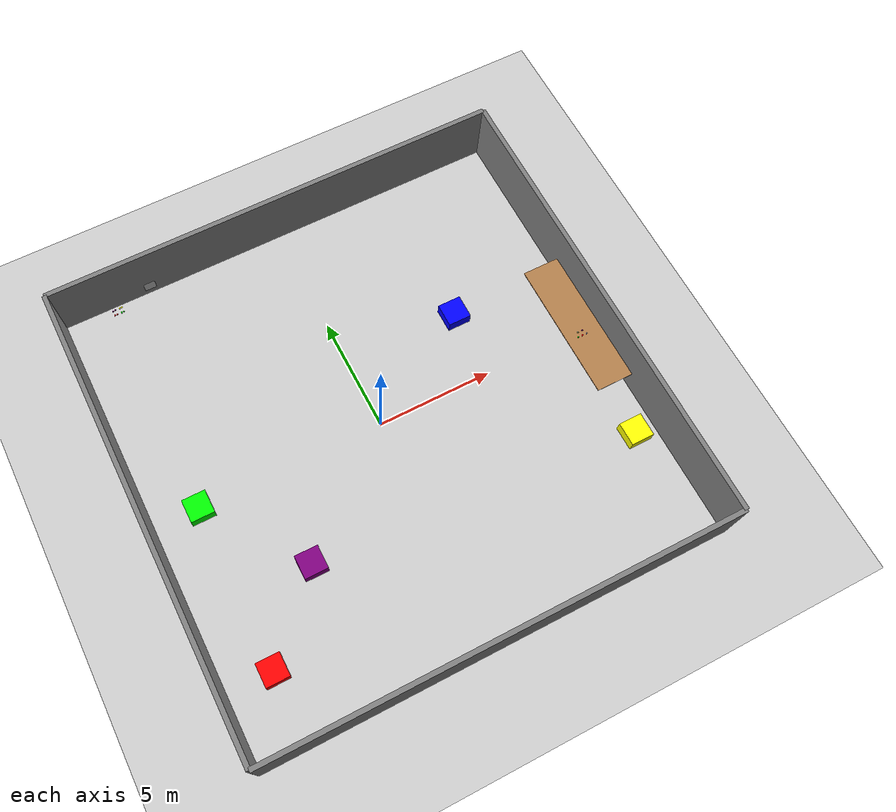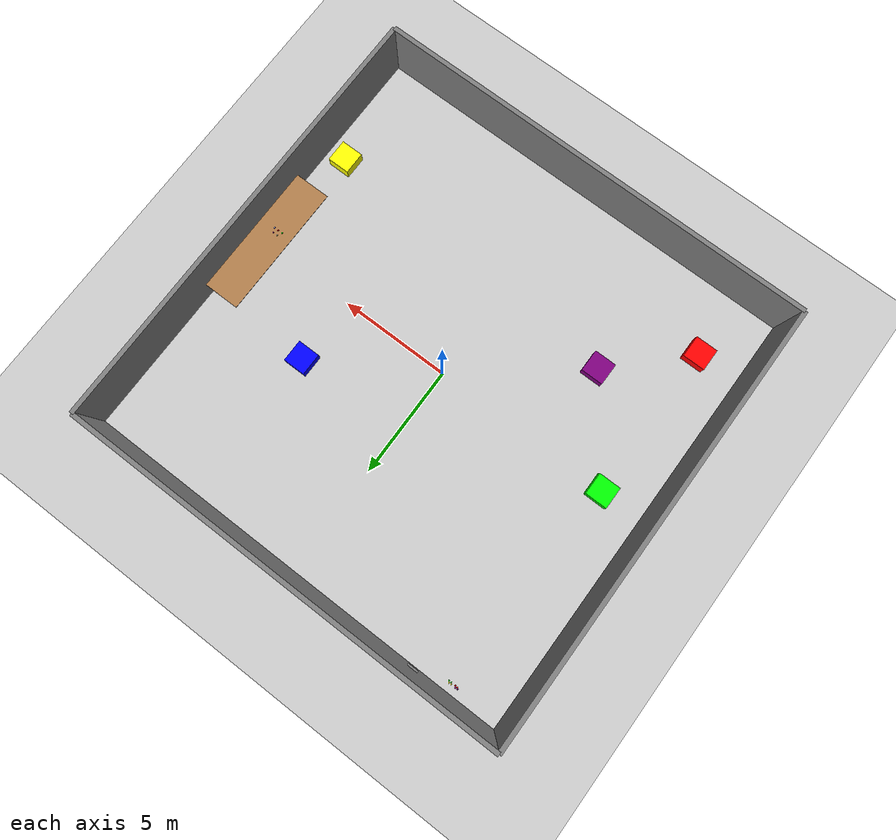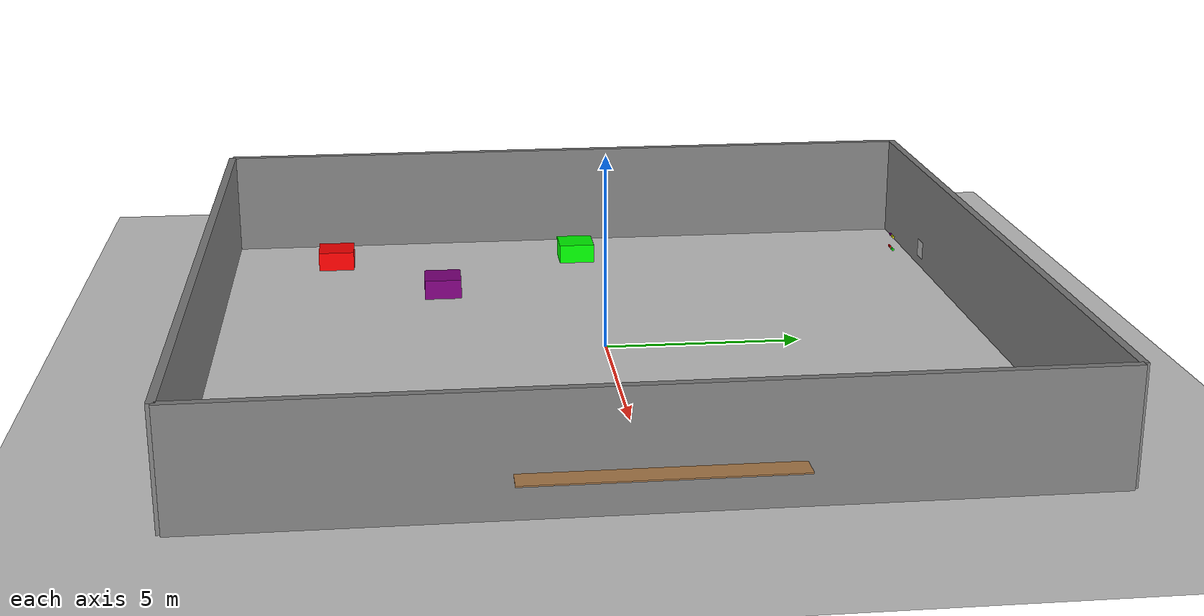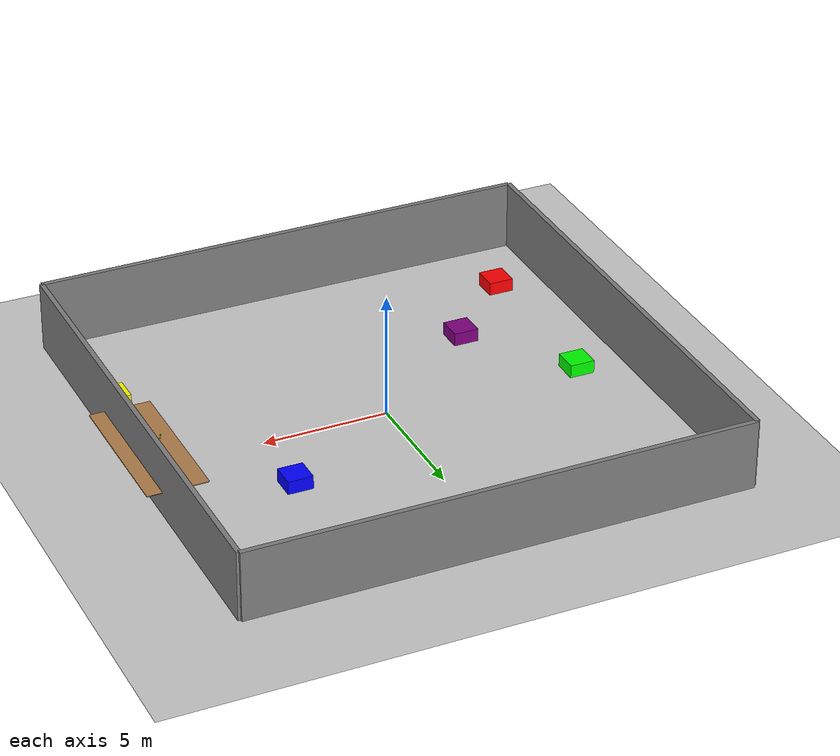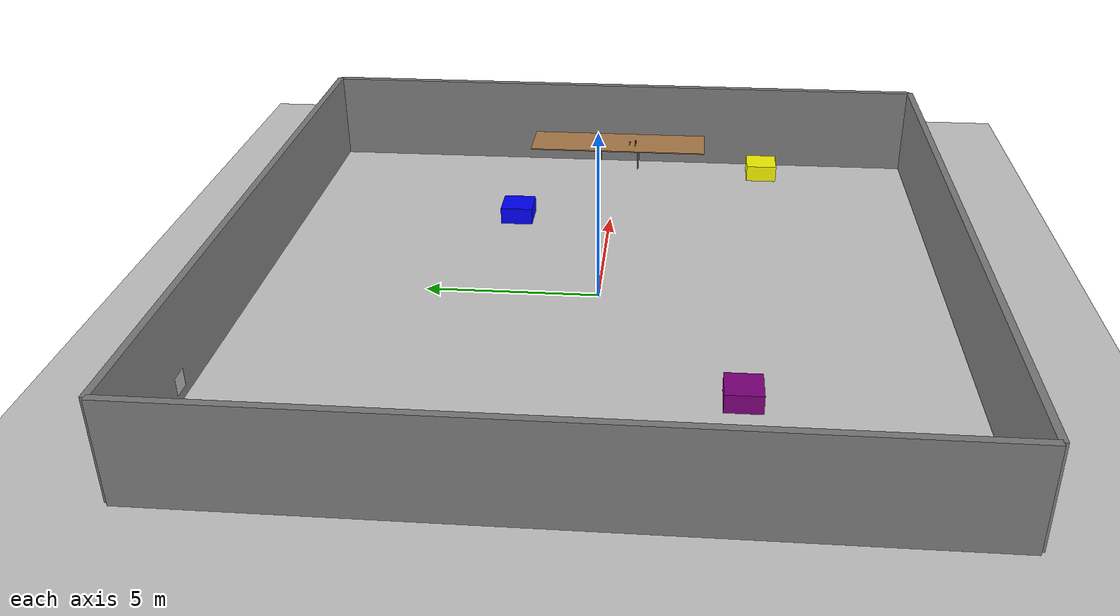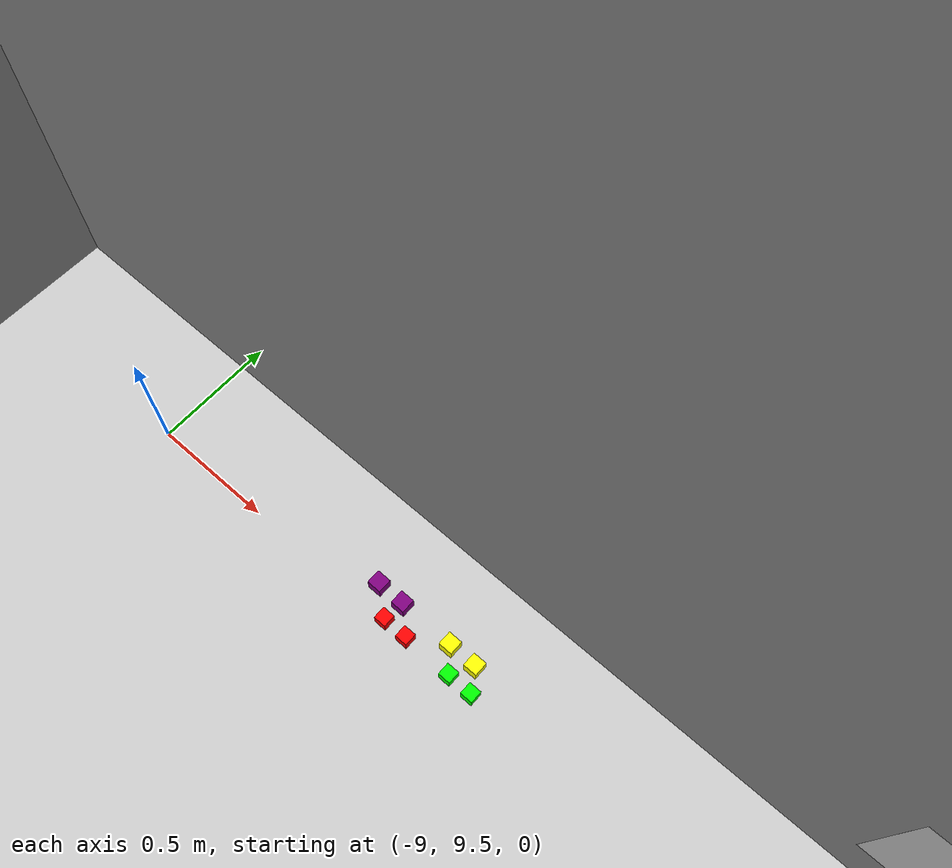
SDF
<sdf version="1.9">
 <world name="warehouse">
  <physics type="ode"><max_step_size>0.001</max_step_size><real_time_factor>1.0</real_time_factor></physics>
  <plugin name="gz::sim::systems::Physics" filename="libgz-sim-physics-system.so"/>
  <plugin name="gz::sim::systems::UserCommands" filename="libgz-sim-user-commands-system.so"/>
  <plugin name="gz::sim::systems::SceneBroadcaster" filename="libgz-sim-scene-broadcaster-system.so"/>
  <plugin name="gz::sim::systems::Sensors" filename="libgz-sim-sensors-system.so">
   <render_engine>ogre2</render_engine>
  </plugin>
  <plugin name="gz::sim::systems::Imu" filename="libgz-sim-imu-system.so"/>
  <plugin name="gz::sim::systems::NavSat" filename="libgz-sim-navsat-system.so"/>
  <scene>
   <ambient>1 1 1 1</ambient>
   <background>0.3 0.7 0.9 1</background>
   <shadows>0</shadows>
   <grid>false</grid>
  </scene>
  <model name="table_camera">
   <static>true</static>
   <link name="camera_link">
    <pose>9 -0.4 2 0 1.57 1.57</pose>
    <sensor name="rgbd_camera" type="depth">
     <update_rate>30</update_rate>
     <camera>
      <horizontal_fov>1.047</horizontal_fov>
      <image><width>640</width><height>480</height><format>R8G8B8</format></image>
      <clip><near>0.1</near><far>10</far></clip>
     </camera>
    </sensor>
    <sensor name="rgb_camera" type="camera">
     <update_rate>30</update_rate>
     <camera>
      <horizontal_fov>1.047</horizontal_fov>
      <image><width>640</width><height>480</height><format>R8G8B8</format></image>
      <clip><near>0.1</near><far>10</far></clip>
     </camera>
    </sensor>
   </link>
  </model>
  <model name="world_camera">
   <static>true</static>
   <link name="camera_link">
    <pose>-18 0 15 0 .8 0</pose>
    <sensor name="rgbd_camera" type="depth">
     <update_rate>30</update_rate>
     <camera>
      <horizontal_fov>1.047</horizontal_fov>
      <image><width>640</width><height>480</height><format>R8G8B8</format></image>
      <clip><near>0.1</near><far>30</far></clip>
     </camera>
    </sensor>
    <sensor name="rgb_camera" type="camera">
     <update_rate>30</update_rate>
     <camera>
      <horizontal_fov>1.047</horizontal_fov>
      <image><width>640</width><height>480</height><format>R8G8B8</format></image>
      <clip><near>0.1</near><far>50</far></clip>
     </camera>
    </sensor>
   </link>
  </model>
  <spherical_coordinates>
   <surface_model>EARTH_WGS84</surface_model>
   <world_frame_orientation>ENU</world_frame_orientation>
   <latitude_deg>-22.986687</latitude_deg>
   <longitude_deg>-43.202501</longitude_deg>
   <elevation>0</elevation>
   <heading_deg>0</heading_deg>
  </spherical_coordinates>
  <light type="directional" name="sun">
   <pose>0 0 10 0 0 0</pose>
   <diffuse>0.8 0.8 0.8 1</diffuse>
   <specular>0.2 0.2 0.2 1</specular>
   <attenuation>
    <range>1000</range>
    <constant>0.9</constant>
    <linear>0.01</linear>
    <quadratic>0.001</quadratic>
   </attenuation>
   <direction>-0.5 0.1 -0.9</direction>
  </light>
  <model name="ground_plane">
   <static>true</static>
   <link name="link">
    <collision name="collision">
     <geometry><plane><normal>0 0 1</normal><size>100 100</size></plane></geometry>
    </collision>
    <visual name="visual">
     <geometry><plane><normal>0 0 1</normal><size>100 100</size></plane></geometry>
     <material>
      <ambient>0.8 0.8 0.8 1</ambient>
      <diffuse>0.8 0.8 0.8 1</diffuse>
      <specular>0.8 0.8 0.8 1</specular>
     </material>
    </visual>
   </link>
  </model>
  <include>
   <name>RightWall</name>
   <pose>0 -10 0 0 0 0</pose>
   <uri>package://warehouse_world/models/grey_wall</uri>
  </include>
  <include>
   <name>LeftWall</name>
   <pose>0 10 0 0 0 0</pose>
   <uri>package://warehouse_world/models/grey_wall</uri>
  </include>
  <include>
   <name>TopWall</name>
   <pose>10 0 0 0 0 1.57</pose>
   <uri>package://warehouse_world/models/grey_wall</uri>
  </include>
  <include>
   <name>BottomWall</name>
   <pose>-10 0 0 0 0 1.57</pose>
   <uri>package://warehouse_world/models/grey_wall</uri>
  </include>
  <include>
   <name>Table</name>
   <pose>9.5 0 0 0 0 1.57</pose>
   <uri>package://warehouse_world/models/table</uri>
  </include>
  <include>
   <name>RedBlock</name>
   <pose>9.0 -0.6 1.03 0 0 0</pose>
   <uri>package://warehouse_world/models/block_red</uri>
  </include>
  <include>
   <name>BlueBlockApril</name>
   <pose>9.2 -0.6 1.03 0 0 0</pose>
   <uri>package://warehouse_world/models/block_blue_april</uri>
  </include>
  <include>
   <name>GreenBlock</name>
   <pose>8.8 -0.6 1.03 0 0 0</pose>
   <uri>package://warehouse_world/models/block_green</uri>
  </include>
  <include>
   <name>PurpleBlock</name>
   <pose>9.1 -0.4 1.03 0 0 0</pose>
   <uri>package://warehouse_world/models/block_purple</uri>
  </include>
  <include>
   <name>YellowBlockApril</name>
   <pose>8.9 -0.4 1.03 0 0 0</pose>
   <uri>package://warehouse_world/models/block_yellow_april</uri>
  </include>
  <include>
   <name>BigYellowBlock</name>
   <pose>9 -5 0 0 0 0</pose>
   <uri>package://warehouse_world/models/big_block_yellow</uri>
  </include>
  <include>
   <name>BigRedBlock</name>
   <pose>-8 -7 0 0 0 0</pose>
   <uri>package://warehouse_world/models/big_block_red</uri>
  </include>
  <include>
   <name>BigBlueBlock</name>
   <pose>5 3 0 0 0 0</pose>
   <uri>package://warehouse_world/models/big_block_blue</uri>
  </include>
  <include>
   <name>BigGreenBlock</name>
   <pose>-8 0 0 0 0 0</pose>
   <uri>package://warehouse_world/models/big_block_green</uri>
  </include>
  <include>
   <name>BigPurpleBlock</name>
   <pose>-5 -4 0 0 0 0</pose>
   <uri>package://warehouse_world/models/big_block_purple</uri>
  </include>
  <include>
   <uri>model://Apriltag36_11_00001_large</uri>
   <name>Apriltag36_11_00001_large</name>
   <pose>-6.0 9.9 0.5 1.570795 0 0</pose>
   <static>true</static>
  </include>
  <include>
   <name>RedBlock_stock1</name>
   <pose>-7.85 9.5 0.07 0 0 0</pose>
   <uri>package://warehouse_world/models/block_red</uri>
  </include>
  <include>
   <name>RedBlock_stock2</name>
   <pose>-7.75 9.5 0.07 0 0 0</pose>
   <uri>package://warehouse_world/models/block_red</uri>
  </include>
  <include>
   <name>GreenBlock_stock1</name>
   <pose>-7.55 9.5 0.07 0 0 0</pose>
   <uri>package://warehouse_world/models/block_green</uri>
  </include>
  <include>
   <name>GreenBlock_stock2</name>
   <pose>-7.45 9.5 0.07 0 0 0</pose>
   <uri>package://warehouse_world/models/block_green</uri>
  </include>
  <include>
   <name>PurpleBlock_stock1</name>
   <pose>-7.85 9.5 0.45 0 0 0</pose>
   <uri>package://warehouse_world/models/block_purple</uri>
  </include>
  <include>
   <name>PurpleBlock_stock2</name>
   <pose>-7.75 9.5 0.45 0 0 0</pose>
   <uri>package://warehouse_world/models/block_purple</uri>
  </include>
  <include>
   <name>YellowBlock_stock1</name>
   <pose>-7.55 9.5 0.45 0 0 0</pose>
   <uri>package://warehouse_world/models/block_yellow</uri>
  </include>
  <include>
   <name>YellowBlock_stock2</name>
   <pose>-7.45 9.5 0.45 0 0 0</pose>
   <uri>package://warehouse_world/models/block_yellow</uri>
  </include>
 </world>
</sdf>

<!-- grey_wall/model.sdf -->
<sdf version="1.5">
  <model name="grey_wall">
    <static>true</static>
    <link name="link">
      <pose>0 0 1.4 0 0 0</pose>
      <collision name="collision">
        <geometry>
          <box>
            <size>7.5 0.2 2.8</size>
          </box>
        </geometry>
      </collision>
      <visual name="visual">
        <cast_shadows>false</cast_shadows>
        <geometry>
          <box>
            <size>20 0.2 2.8</size>
          </box>
        </geometry>
        <material>
            <ambient>0.1 0.1 0.1 1</ambient>
            <diffuse>0.5 0.5 0.5 1</diffuse>
            <specular>0.1 0.1 0.1 1</specular>
            <emissive>0 0 0 1</emissive>
        </material>
      </visual>
    </link>
  </model>
</sdf>

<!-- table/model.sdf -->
<sdf version="1.5">
  <model name="table">
    <static>true</static>
    <link name="link">
      <collision name="surface">
        <pose>0 0 1.0 0 0 0</pose>
        <geometry>
          <box>
            <size>6.0 2.4 0.03</size>
          </box>
        </geometry>
        <surface>
          <friction>
            <ode>
              <mu>0.6</mu>
              <mu2>0.6</mu2>
            </ode>
          </friction>
        </surface>
      </collision>
      <visual name="surface">
        <pose>0 0 1.0 0 0 0</pose>
        <geometry>
          <box>
            <size>6.0 2.4 0.03</size>
          </box>
        </geometry>
        <material>
          <diffuse>1.0 1.0 1.0</diffuse>
          <script>
            <uri>file://media/materials/scripts/gazebo.material</uri>
            <name>Gazebo/Wood</name>
          </script>
          <!-- PBR for Ignition, material scripts for gazebo classic-->
          <pbr>
            <metal>
              <albedo_map>model://table/Table_Diffuse.jpg</albedo_map>
            </metal>
          </pbr>
        </material>
      </visual>
      <collision name="front_left_leg">
        <pose>0.68 0.38 0.5 0 0 0</pose>
        <geometry>
          <cylinder>
            <radius>0.02</radius>
            <length>1.0</length>
          </cylinder>
        </geometry>
      </collision>
      <visual name="front_left_leg">
        <pose>0.68 0.38 0.5 0 0 0</pose>
        <geometry>
          <cylinder>
            <radius>0.02</radius>
            <length>1.0</length>
          </cylinder>
        </geometry>
        <material>
          <diffuse>0.5 0.5 0.5</diffuse>
          <script>
            <uri>file://media/materials/scripts/gazebo.material</uri>
            <name>Gazebo/Grey</name>
          </script>
        </material>
      </visual>
      <collision name="front_right_leg">
        <pose>0.68 -0.38 0.5 0 0 0</pose>
        <geometry>
          <cylinder>
            <radius>0.02</radius>
            <length>1.0</length>
          </cylinder>
        </geometry>
      </collision>
      <visual name="front_right_leg">
        <pose>0.68 -0.38 0.5 0 0 0</pose>
        <geometry>
          <cylinder>
            <radius>0.02</radius>
            <length>1.0</length>
          </cylinder>
        </geometry>
        <material>
          <diffuse>0.5 0.5 0.5</diffuse>
          <script>
            <uri>file://media/materials/scripts/gazebo.material</uri>
            <name>Gazebo/Grey</name>
          </script>
        </material>
      </visual>
      <collision name="back_right_leg">
        <pose>-0.68 -0.38 0.5 0 0 0</pose>
        <geometry>
          <cylinder>
            <radius>0.02</radius>
            <length>1.0</length>
          </cylinder>
        </geometry>
      </collision>
      <visual name="back_right_leg">
        <pose>-0.68 -0.38 0.5 0 0 0</pose>
        <geometry>
          <cylinder>
            <radius>0.02</radius>
            <length>1.0</length>
          </cylinder>
        </geometry>
        <material>
          <diffuse>0.5 0.5 0.5</diffuse>
          <script>
            <uri>file://media/materials/scripts/gazebo.material</uri>
            <name>Gazebo/Grey</name>
          </script>
        </material>
      </visual>
      <collision name="back_left_leg">
        <pose>-0.68 0.38 0.5 0 0 0</pose>
        <geometry>
          <cylinder>
            <radius>0.02</radius>
            <length>1.0</length>
          </cylinder>
        </geometry>
      </collision>
      <visual name="back_left_leg">
        <pose>-0.68 0.38 0.5 0 0 0</pose>
        <geometry>
          <cylinder>
            <radius>0.02</radius>
            <length>1.0</length>
          </cylinder>
        </geometry>
        <material>
          <diffuse>0.5 0.5 0.5</diffuse>
          <script>
            <uri>file://media/materials/scripts/gazebo.material</uri>
            <name>Gazebo/Grey</name>
          </script>
        </material>
      </visual>
    </link>
  </model>
</sdf>

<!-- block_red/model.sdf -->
<sdf version="1.9">

    <model name="red_block">
      <static>false</static>
      <link name="link">
        <pose>0 0 0 0 0 0</pose>
        <collision name="collision">
          <geometry>
            <box>
              <size>0.05 0.05 0.05</size>
            </box>
          </geometry>
          <surface>
            <contact>
              <collide_without_contact>false</collide_without_contact>
            </contact>
            <friction>
              <ode>
                <mu>1.0</mu>
                <mu2>1.0</mu2>
              </ode>
            </friction>
          </surface>
        </collision>
        <inertial>
          <mass>0.1</mass>
          <inertia>
            <ixx>8.333e-05</ixx>
            <ixy>0.0</ixy>
            <ixz>0.0</ixz>
            <iyy>8.333e-05</iyy>
            <iyz>0.0</iyz>
            <izz>8.333e-05</izz>
          </inertia>
        </inertial>
        <visual name="visual">
          <geometry>
            <box>
              <size>0.05 0.05 0.05</size>
            </box>
          </geometry>
          <material>
            <ambient>1 0 0 1</ambient>
            <diffuse>1 0 0 1</diffuse>
            <specular>0.1 0.1 0.1 1</specular>
            <emissive>0 0 0 1</emissive>
          </material>
        </visual>
      </link>
    </model>
</sdf>

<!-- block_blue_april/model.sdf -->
<sdf version="1.9">

    <model name="blue_block_april">
      <static>true</static>
      <link name="link">
        <pose>0 0 0 0 0 0</pose>
        <collision name="collision">
          <geometry>
            <box>
              <size>0.05 0.05 0.05</size>
            </box>
          </geometry>
          <surface>
            <contact>
              <collide_without_contact>false</collide_without_contact>
            </contact>
          </surface>
        </collision>
        <inertial>
          <mass>0.1</mass>
          <inertia>
            <ixx>8.333e-05</ixx>
            <ixy>0.0</ixy>
            <ixz>0.0</ixz>
            <iyy>8.333e-05</iyy>
            <iyz>0.0</iyz>
            <izz>8.333e-05</izz>
          </inertia>
        </inertial>
        <visual name="visual">
          <geometry>
            <box>
              <size>0.05 0.05 0.05</size>
            </box>
          </geometry>
          <material>
            <ambient>0 0 1 1</ambient>
            <diffuse>0 0 1 1</diffuse>
            <specular>0.1 0.1 0.1 1</specular>
            <emissive>0 0 0 1</emissive>
          </material>

        </visual>

        <!-- AprilTag decal on top face -->
        <visual name="apriltag_decal">
          <pose>0 0 0.026 0 0 0</pose>
          <geometry>
            <mesh>
              <uri>model://Apriltag36_11_00001/meshes/tag36_11_00001.dae</uri>
              <scale>0.5 0.5 0.5</scale>
            </mesh>
          </geometry>
        </visual>
      </link>
    </model>
</sdf>

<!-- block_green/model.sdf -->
<sdf version="1.9">

    <model name="green_block">
      <static>false</static>
      <link name="link">
        <pose>0 0 0 0 0 0</pose>
        <collision name="collision">
          <geometry>
            <box>
              <size>0.05 0.05 0.05</size>
            </box>
          </geometry>
          <surface>
            <contact>
              <collide_without_contact>false</collide_without_contact>
            </contact>
            <friction>
              <ode>
                <mu>1.0</mu>
                <mu2>1.0</mu2>
              </ode>
            </friction>
          </surface>
        </collision>
        <inertial>
          <mass>0.1</mass>
          <inertia>
            <ixx>8.333e-05</ixx>
            <ixy>0.0</ixy>
            <ixz>0.0</ixz>
            <iyy>8.333e-05</iyy>
            <iyz>0.0</iyz>
            <izz>8.333e-05</izz>
          </inertia>
        </inertial>
        <visual name="visual">
          <geometry>
            <box>
              <size>0.05 0.05 0.05</size>
            </box>
          </geometry>
          <material>
            <ambient>0 1 0 1</ambient>
            <diffuse>0 1 0 1</diffuse>
            <specular>0.1 0.1 0.1 1</specular>
            <emissive>0 0 0 1</emissive>
          </material>
        </visual>
      </link>
    </model>
</sdf>

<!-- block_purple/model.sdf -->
<sdf version="1.9">

    <model name="purple_block">
      <static>false</static>
      <link name="link">
        <pose>0 0 0 0 0 0</pose>
        <collision name="collision">
          <geometry>
            <box>
              <size>0.05 0.05 0.05</size>
            </box>
          </geometry>
          <surface>
            <contact>
              <collide_without_contact>false</collide_without_contact>
            </contact>
            <friction>
              <ode>
                <mu>1.0</mu>
                <mu2>1.0</mu2>
              </ode>
            </friction>
          </surface>
        </collision>
        <inertial>
          <mass>0.1</mass>
          <inertia>
            <ixx>8.333e-05</ixx>
            <ixy>0.0</ixy>
            <ixz>0.0</ixz>
            <iyy>8.333e-05</iyy>
            <iyz>0.0</iyz>
            <izz>8.333e-05</izz>
          </inertia>
        </inertial>
        <visual name="visual">
          <geometry>
            <box>
              <size>0.05 0.05 0.05</size>
            </box>
          </geometry>
          <material>
            <ambient>0.5 0 0.5 1</ambient>
            <diffuse>0.5 0 0.5 1</diffuse>
            <specular>0.1 0.1 0.1 1</specular>
            <emissive>0 0 0 1</emissive>
          </material>
        </visual>
      </link>
    </model>
</sdf>

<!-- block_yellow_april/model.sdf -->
<sdf version="1.9">

    <model name="red_block">
      <static>true</static>
      <link name="link">
        <pose>0 0 0 0 0 0</pose>
        <collision name="collision">
          <geometry>
            <box>
              <size>0.05 0.05 0.05</size>
            </box>
          </geometry>
          <surface>
            <contact>
              <collide_without_contact>false</collide_without_contact>
            </contact>
          </surface>
        </collision>
        <inertial>
          <mass>0.1</mass>
          <inertia>
            <ixx>8.333e-05</ixx>
            <ixy>0.0</ixy>
            <ixz>0.0</ixz>
            <iyy>8.333e-05</iyy>
            <iyz>0.0</iyz>
            <izz>8.333e-05</izz>
          </inertia>
        </inertial>
        <visual name="visual">
          <geometry>
            <box>
              <size>0.05 0.05 0.05</size>
            </box>
          </geometry>
          <material>
            <ambient>1 1 0 1</ambient>
            <diffuse>1 1 0 1</diffuse>
            <specular>0.1 0.1 0.1 1</specular>
            <emissive>0 0 0 1</emissive>
          </material>
        </visual>

        <!-- AprilTag decal on top face -->
        <visual name="apriltag_decal">
          <pose>0 0 0.026 0 0 0</pose>
          <geometry>
            <mesh>
              <uri>model://Apriltag36_11_00002/meshes/tag36_11_00002.dae</uri>
              <scale>0.5 0.5 0.5</scale>
            </mesh>
          </geometry>
        </visual>
      </link>
    </model>
</sdf>

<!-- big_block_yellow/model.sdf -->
<sdf version="1.9">

    <model name="big_block_yellow">
      <static>true</static>
      <link name="link">
        <pose>0 0 0 0 0 0</pose>
        <collision name="collision">
          <geometry>
            <box>
              <size>1.0 1.0 1.0</size>
            </box>
          </geometry>
        </collision>
        <visual name="visual">
          <geometry>
            <box>
              <size>1.0 1.0 1.0</size>
            </box>
          </geometry>
          <material>
            <ambient>1 1 0 1</ambient>
            <diffuse>1 1 0 1</diffuse>
            <specular>0.1 0.1 0.1 1</specular>
            <emissive>0 0 0 1</emissive>
          </material>
        </visual>
      </link>
    </model>
</sdf>

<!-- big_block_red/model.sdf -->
<sdf version="1.9">

    <model name="big_block_red">
      <static>true</static>
      <link name="link">
        <pose>0 0 0 0 0 0</pose>
        <collision name="collision">
          <geometry>
            <box>
              <size>1.0 1.0 1.0</size>
            </box>
          </geometry>
        </collision>
        <visual name="visual">
          <geometry>
            <box>
              <size>1.0 1.0 1.0</size>
            </box>
          </geometry>
          <material>
            <ambient>1 0 0 1</ambient>
            <diffuse>1 0 0 1</diffuse>
            <specular>0.1 0.1 0.1 1</specular>
            <emissive>0 0 0 1</emissive>
          </material>
        </visual>
      </link>
    </model>
</sdf>

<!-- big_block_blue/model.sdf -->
<sdf version="1.9">

    <model name="big_block_blue">
      <static>true</static>
      <link name="link">
        <pose>0 0 0 0 0 0</pose>
        <collision name="collision">
          <geometry>
            <box>
              <size>1.0 1.0 1.0</size>
            </box>
          </geometry>
        </collision>
        <visual name="visual">
          <geometry>
            <box>
              <size>1.0 1.0 1.0</size>
            </box>
          </geometry>
          <material>
            <ambient>0 0 1 1</ambient>
            <diffuse>0 0 1 1</diffuse>
            <specular>0.1 0.1 0.1 1</specular>
            <emissive>0 0 0 1</emissive>
          </material>
        </visual>
      </link>
    </model>
</sdf>

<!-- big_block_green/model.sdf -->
<sdf version="1.9">

    <model name="big_block_green">
      <static>true</static>
      <link name="link">
        <pose>0 0 0 0 0 0</pose>
        <collision name="collision">
          <geometry>
            <box>
              <size>1.0 1.0 1.0</size>
            </box>
          </geometry>
        </collision>
        <visual name="visual">
          <geometry>
            <box>
              <size>1.0 1.0 1.0</size>
            </box>
          </geometry>
          <material>
            <ambient>0 1 0 1</ambient>
            <diffuse>0 1 0 1</diffuse>
            <specular>0.1 0.1 0.1 1</specular>
            <emissive>0 0 0 1</emissive>
          </material>
        </visual>
      </link>
    </model>
</sdf>

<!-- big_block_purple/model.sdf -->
<sdf version="1.9">

    <model name="big_block_purple">
      <static>true</static>
      <link name="link">
        <pose>0 0 0 0 0 0</pose>
        <collision name="collision">
          <geometry>
            <box>
              <size>1.0 1.0 1.0</size>
            </box>
          </geometry>
        </collision>
        <visual name="visual">
          <geometry>
            <box>
              <size>1.0 1.0 1.0</size>
            </box>
          </geometry>
          <material>
            <ambient>0.5 0 0.5 1</ambient>
            <diffuse>0.5 0 0.5 1</diffuse>
            <specular>0.1 0.1 0.1 1</specular>
            <emissive>0 0 0 1</emissive>
          </material>
        </visual>
      </link>
    </model>
</sdf>

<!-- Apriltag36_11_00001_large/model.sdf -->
<sdf version='1.6'>
  <model name='Apriltag36_11_00001'>
    <link name="link">
      <inertial>
        <pose>0 0 0 0 0 0</pose>
        <mass>0.0</mass>
        <inertia>
          <ixx>0.0001</ixx>
          <ixy>0</ixy>
          <ixz>0</ixz>
          <iyy>0.0001</iyy>
          <iyz>0</iyz>
          <izz>0.0001</izz>
        </inertia>
      </inertial>
      <collision name="collision">
        <pose>0 0 0 0 0 0</pose>
        <geometry>
          <mesh>
            <uri>model://Apriltag36_11_00001/meshes/tag36_11_00001.dae</uri>
            <scale>5 5 5</scale>
          </mesh>
        </geometry>
        <surface>
          <friction>
            <ode>
              <mu>1.0</mu>
              <mu2>1.0</mu2>
            </ode>
          </friction>
          <contact>
            <ode>
              <kp>10000000.0</kp>
              <kd>1.0</kd>
              <min_depth>0.001</min_depth>
              <max_vel>0.1</max_vel>
            </ode>
          </contact>
        </surface>
      </collision>
      <visual name="visual">
        <pose>0 0 0 0 0 0</pose>
        <geometry>
          <mesh>
            <uri>model://Apriltag36_11_00001/meshes/tag36_11_00001.dae</uri>
            <scale>5 5 5</scale>
          </mesh>
        </geometry>
      </visual>
    </link>
  </model>
</sdf>

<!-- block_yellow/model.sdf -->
<sdf version="1.9">

    <model name="yellw_block">
      <static>false</static>
      <link name="link">
        <pose>0 0 0 0 0 0</pose>
        <collision name="collision">
          <geometry>
            <box>
              <size>0.05 0.05 0.05</size>
            </box>
          </geometry>
          <surface>
            <contact>
              <collide_without_contact>false</collide_without_contact>
            </contact>
            <friction>
              <ode>
                <mu>1.0</mu>
                <mu2>1.0</mu2>
              </ode>
            </friction>
          </surface>
        </collision>
        <inertial>
          <mass>0.1</mass>
          <inertia>
            <ixx>8.333e-05</ixx>
            <ixy>0.0</ixy>
            <ixz>0.0</ixz>
            <iyy>8.333e-05</iyy>
            <iyz>0.0</iyz>
            <izz>8.333e-05</izz>
          </inertia>
        </inertial>
        <visual name="visual">
          <geometry>
            <box>
              <size>0.05 0.05 0.05</size>
            </box>
          </geometry>
          <material>
            <ambient>1 1 0 1</ambient>
            <diffuse>1 1 0 1</diffuse>
            <specular>0.1 0.1 0.1 1</specular>
            <emissive>0 0 0 1</emissive>
          </material>
        </visual>
      </link>
    </model>
</sdf>
